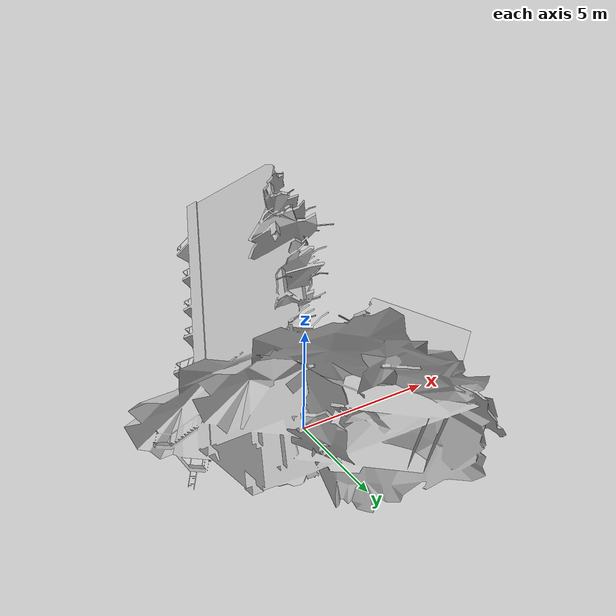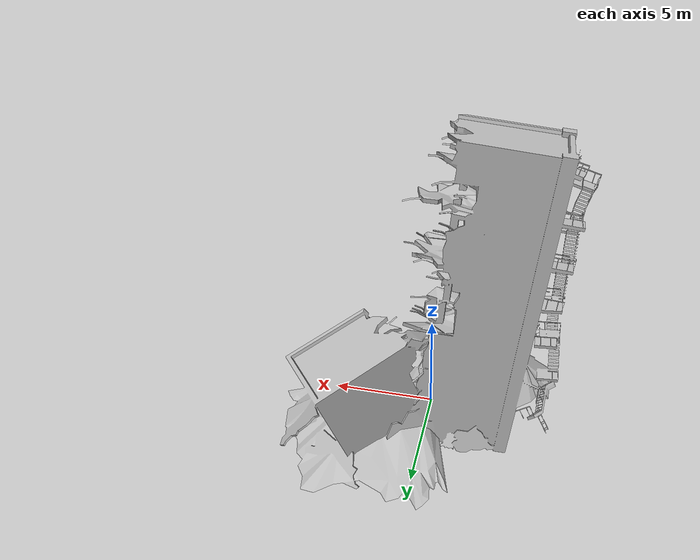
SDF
<?xml version="1.0" ?>
<sdf version="1.6">
  <model name="collapsed_industrial">
    <static>true</static>
    <link name="link">
      <collision name="collision">
        <geometry>
          <mesh>
               <scale>0.6 0.6 0.6</scale>
            <uri>model://collapsed_industrial/meshes/collapsed_industrial.dae</uri>
          </mesh>
        </geometry>
      </collision>
      <visual name="visual">
        <geometry>
          <mesh>
               <scale>0.6 0.6 0.6</scale>
            <uri>model://collapsed_industrial/meshes/collapsed_industrial.dae</uri>
          </mesh>
        </geometry>
      </visual>
    </link>
  </model>
</sdf>
